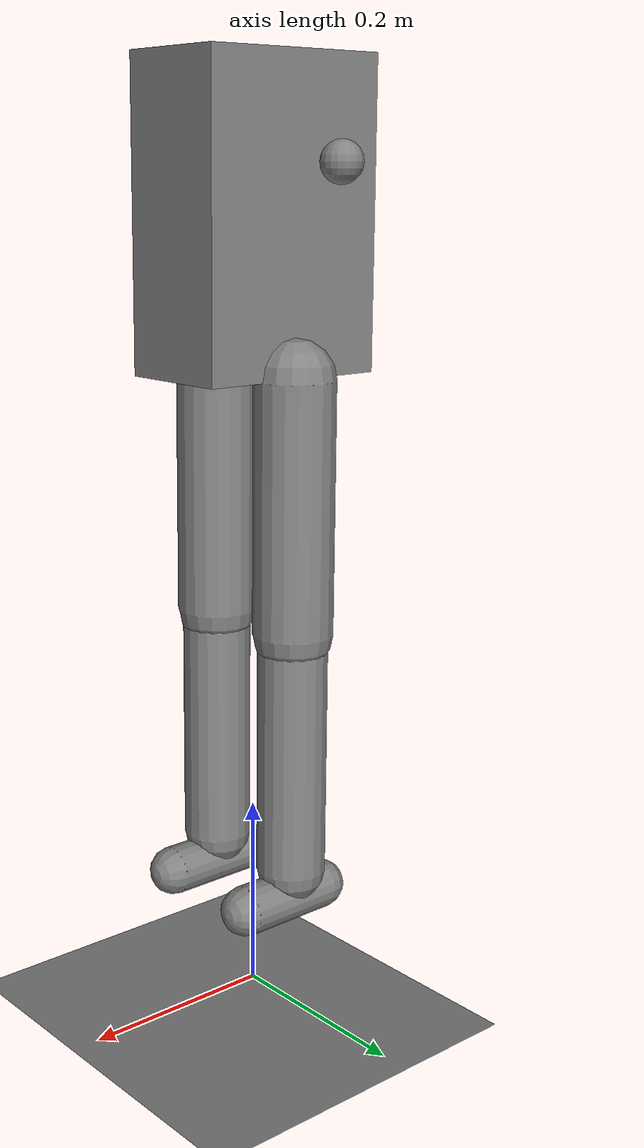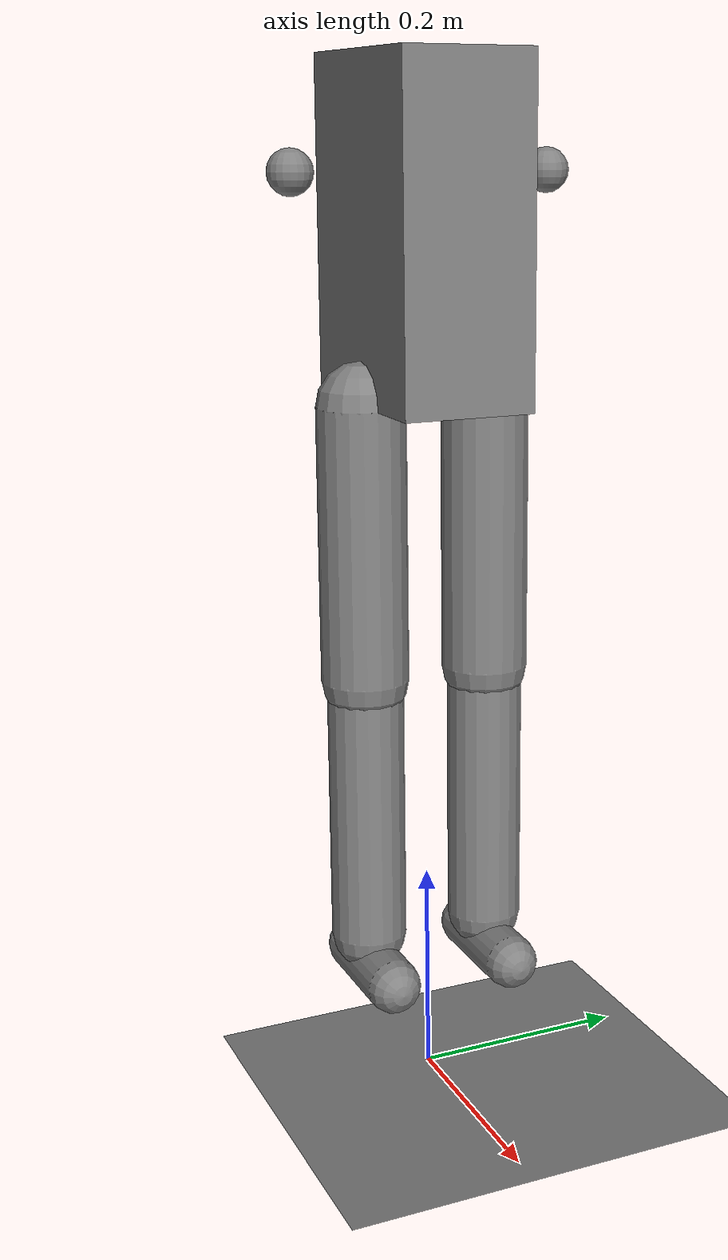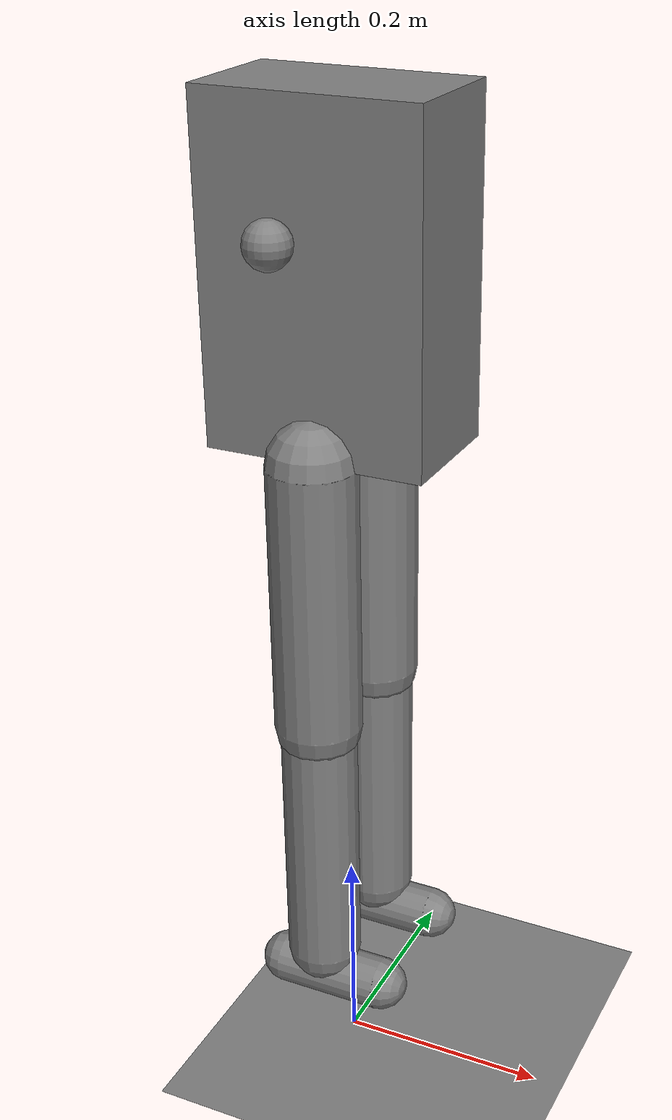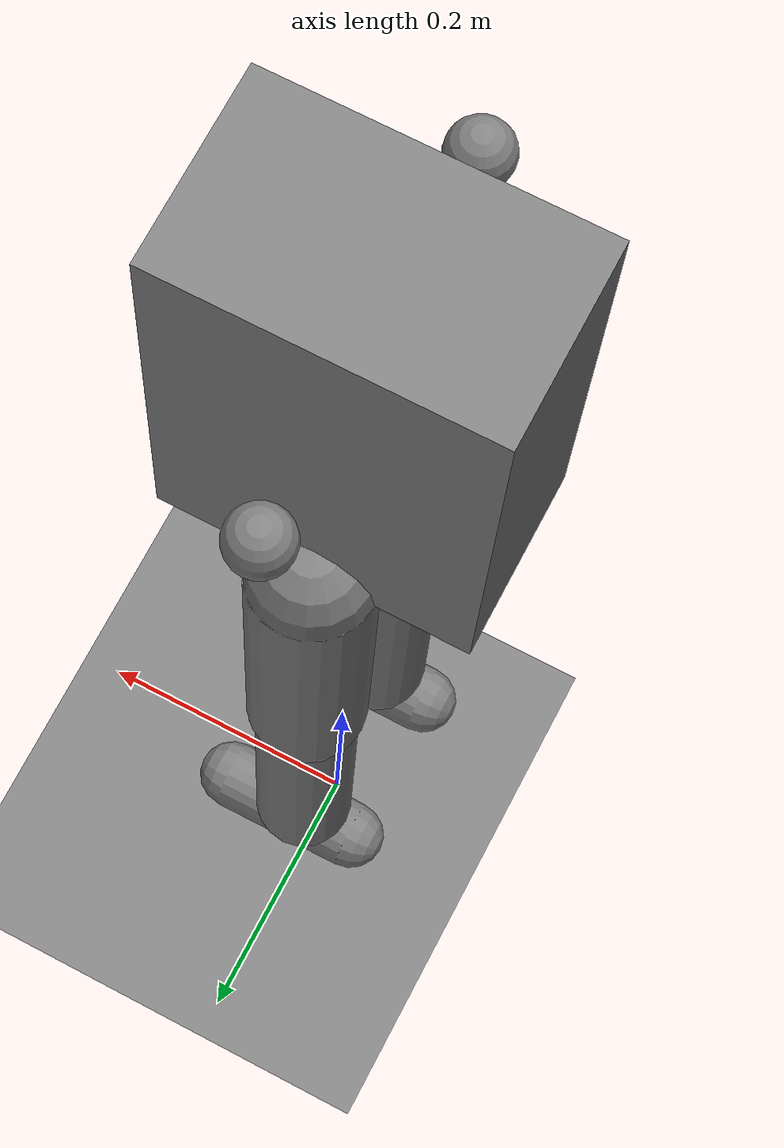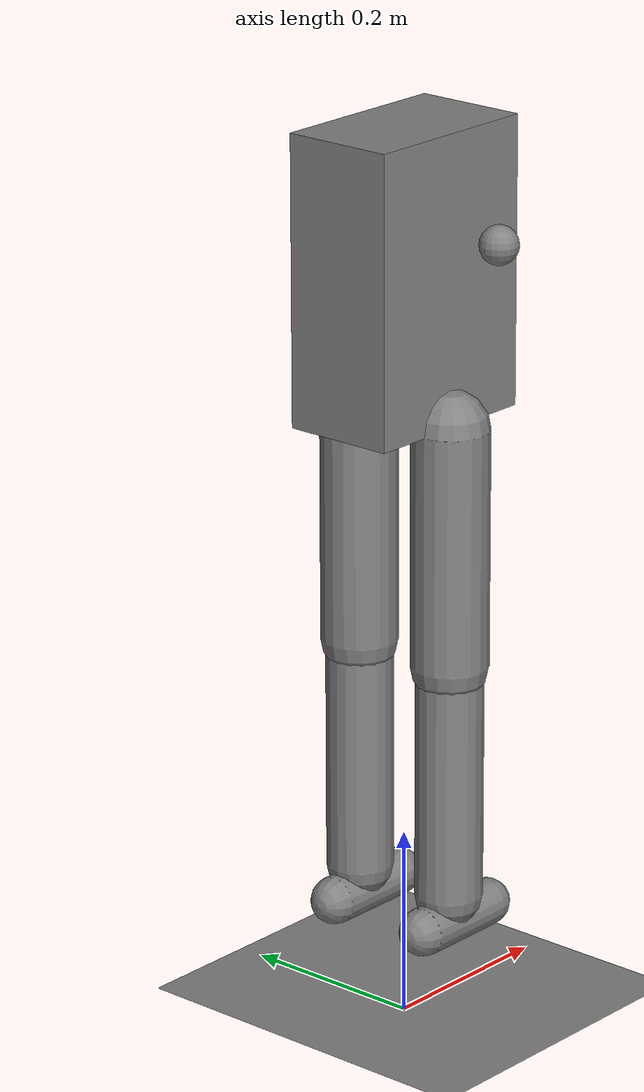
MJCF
<mujoco model="toy_biped">
  <compiler angle="radian"/>

  <default>
    <joint damping="0.1"/>
  </default>

  <worldbody>
    <geom name="floor" type="plane" size="5 5 0.1"/>

    <!-- This pos is a placeholder. robot.yaml's standing keyframe carries the
         height measured against the foot capsules, per
         docs/adding-a-robot.md's rule. -->
    <body name="torso" pos="0 0 0.8">
      <freejoint/>
      <geom name="torso_geom" type="box" size="0.1 0.06 0.15" mass="5.0"/>

      <body name="left_thigh" pos="0 0.06 -0.15">
        <joint name="left_hip_pitch_joint" type="hinge" axis="0 1 0" range="-1.2 1.2" armature="99.0"/>
        <geom name="left_thigh_geom" type="capsule" fromto="0 0 0 0 0 -0.25" size="0.04" mass="2.0"/>

        <body name="left_shank" pos="0 0 -0.25">
          <joint name="left_knee_joint" type="hinge" axis="0 1 0" range="-1.0 1.0" armature="88.0" frictionloss="0.25"/>
          <geom name="left_shank_geom" type="capsule" fromto="0 0 0 0 0 -0.25" size="0.035" mass="1.5"/>
          <site name="left_foot" pos="0.01 0 -0.27"/>
          <geom name="left_foot_geom" type="capsule" fromto="-0.04 0 -0.28 0.06 0 -0.28" size="0.025" mass="0.3"/>
        </body>
      </body>

      <body name="right_thigh" pos="0 -0.06 -0.15">
        <joint name="right_hip_pitch_joint" type="hinge" axis="0 1 0" range="-1.2 1.2" armature="99.0"/>
        <geom name="right_thigh_geom" type="capsule" fromto="0 0 0 0 0 -0.25" size="0.04" mass="2.0"/>

        <body name="right_shank" pos="0 0 -0.25">
          <joint name="right_knee_joint" type="hinge" axis="0 1 0" range="-1.0 1.0" armature="88.0" frictionloss="0.25"/>
          <geom name="right_shank_geom" type="capsule" fromto="0 0 0 0 0 -0.25" size="0.035" mass="1.5"/>
          <site name="right_foot" pos="0.01 0 -0.27"/>
          <geom name="right_foot_geom" type="capsule" fromto="-0.04 0 -0.28 0.06 0 -0.28" size="0.025" mass="0.3"/>
        </body>
      </body>

      <body name="left_stub" pos="0 0.12 0.05">
        <joint name="toe_joint_a" type="hinge" axis="1 0 0" range="-0.3 0.3"/>
        <geom name="left_stub_geom" type="sphere" size="0.02" mass="0.05"/>
      </body>

      <body name="right_stub" pos="0 -0.12 0.05">
        <joint name="toe_joint_b" type="hinge" axis="1 0 0" range="-0.3 0.3"/>
        <geom name="right_stub_geom" type="sphere" size="0.02" mass="0.05"/>
      </body>
    </body>
  </worldbody>
</mujoco>
